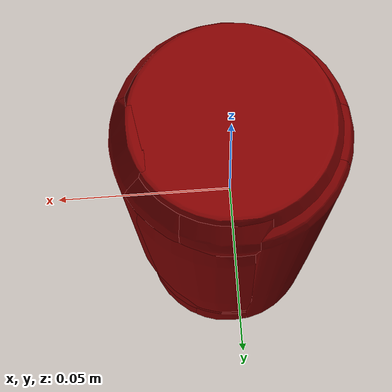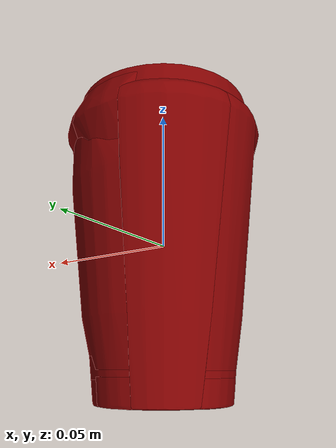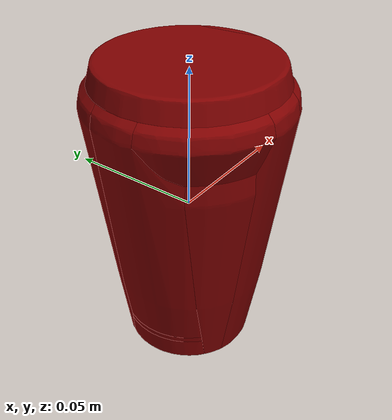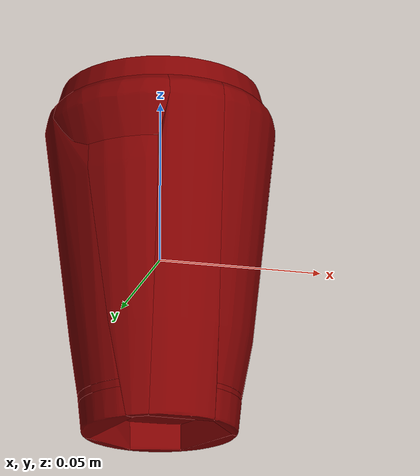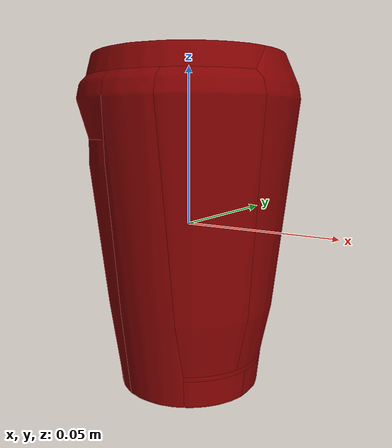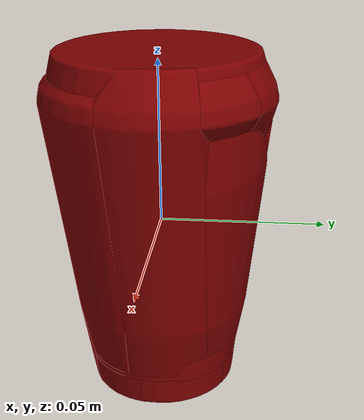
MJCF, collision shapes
<mujoco model="coffee_cup_32">
  <asset>
    <mesh file="visual/model_normalized_0.obj" name="model_normalized_0_vis" scale="0.10500000000000002 0.10500000000000002 0.10500000000000002" refquat="1.0000000000000004 0.0 0.0 0.0"/>
    <texture type="2d" name="image0" file="visual/image0.png"/>
    <material name="initialShadingGroup.004" texture="image0" specular="0.5" shininess="0.25"/>
    <mesh file="collision/collision_mesh_collision_0.obj" name="coffee_collision_mesh_0" scale="0.10500000000000002 0.10500000000000002 0.10500000000000002" refquat="1.0000000000000004 0.0 0.0 0.0"/>
    <mesh file="collision/collision_mesh_collision_1.obj" name="coffee_collision_mesh_1" scale="0.10500000000000002 0.10500000000000002 0.10500000000000002" refquat="1.0000000000000004 0.0 0.0 0.0"/>
    <mesh file="collision/collision_mesh_collision_2.obj" name="coffee_collision_mesh_2" scale="0.10500000000000002 0.10500000000000002 0.10500000000000002" refquat="1.0000000000000004 0.0 0.0 0.0"/>
    <mesh file="collision/collision_mesh_collision_3.obj" name="coffee_collision_mesh_3" scale="0.10500000000000002 0.10500000000000002 0.10500000000000002" refquat="1.0000000000000004 0.0 0.0 0.0"/>
    <mesh file="collision/collision_mesh_collision_4.obj" name="coffee_collision_mesh_4" scale="0.10500000000000002 0.10500000000000002 0.10500000000000002" refquat="1.0000000000000004 0.0 0.0 0.0"/>
    <mesh file="collision/collision_mesh_collision_5.obj" name="coffee_collision_mesh_5" scale="0.10500000000000002 0.10500000000000002 0.10500000000000002" refquat="1.0000000000000004 0.0 0.0 0.0"/>
    <mesh file="collision/collision_mesh_collision_6.obj" name="coffee_collision_mesh_6" scale="0.10500000000000002 0.10500000000000002 0.10500000000000002" refquat="1.0000000000000004 0.0 0.0 0.0"/>
    <mesh file="collision/collision_mesh_collision_7.obj" name="coffee_collision_mesh_7" scale="0.10500000000000002 0.10500000000000002 0.10500000000000002" refquat="1.0000000000000004 0.0 0.0 0.0"/>
    <mesh file="collision/collision_mesh_collision_8.obj" name="coffee_collision_mesh_8" scale="0.10500000000000002 0.10500000000000002 0.10500000000000002" refquat="1.0000000000000004 0.0 0.0 0.0"/>
    <mesh file="collision/collision_mesh_collision_9.obj" name="coffee_collision_mesh_9" scale="0.10500000000000002 0.10500000000000002 0.10500000000000002" refquat="1.0000000000000004 0.0 0.0 0.0"/>
    <mesh file="collision/collision_mesh_collision_10.obj" name="coffee_collision_mesh_10" scale="0.10500000000000002 0.10500000000000002 0.10500000000000002" refquat="1.0000000000000004 0.0 0.0 0.0"/>
    <mesh file="collision/collision_mesh_collision_11.obj" name="coffee_collision_mesh_11" scale="0.10500000000000002 0.10500000000000002 0.10500000000000002" refquat="1.0000000000000004 0.0 0.0 0.0"/>
    <mesh file="collision/collision_mesh_collision_12.obj" name="coffee_collision_mesh_12" scale="0.10500000000000002 0.10500000000000002 0.10500000000000002" refquat="1.0000000000000004 0.0 0.0 0.0"/>
    <mesh file="collision/collision_mesh_collision_13.obj" name="coffee_collision_mesh_13" scale="0.10500000000000002 0.10500000000000002 0.10500000000000002" refquat="1.0000000000000004 0.0 0.0 0.0"/>
    <mesh file="collision/collision_mesh_collision_14.obj" name="coffee_collision_mesh_14" scale="0.10500000000000002 0.10500000000000002 0.10500000000000002" refquat="1.0000000000000004 0.0 0.0 0.0"/>
    <mesh file="collision/collision_mesh_collision_15.obj" name="coffee_collision_mesh_15" scale="0.10500000000000002 0.10500000000000002 0.10500000000000002" refquat="1.0000000000000004 0.0 0.0 0.0"/>
  </asset>
  <default>
    <default class="region">
      <geom group="1" conaffinity="0" contype="0" rgba="0 1 0 0"/>
    </default>
    <default class="collision">
      <geom group="0" rgba="0.5 0 0 0.5" density="1000.0"/>
    </default>
  </default>
  <worldbody>
    <body>
      <body name="object">
        <geom solimp="0.998 0.998 0.001" solref="0.001 1" density="100" friction="0.95 0.3 0.1" type="mesh" mesh="model_normalized_0_vis" conaffinity="0" contype="0" group="1" material="initialShadingGroup.004"/>
        <geom class="region" name="reg_bbox" type="box" pos="-3.3180000000021535e-07 -1.3439999999920184e-07 6.0745125000005466e-05" size="0.03475835160000001 0.03475688370000001 0.053016756975000016"/>
        <geom mesh="coffee_collision_mesh_0" type="mesh" class="collision"/>
        <geom mesh="coffee_collision_mesh_1" type="mesh" class="collision"/>
        <geom mesh="coffee_collision_mesh_2" type="mesh" class="collision"/>
        <geom mesh="coffee_collision_mesh_3" type="mesh" class="collision"/>
        <geom mesh="coffee_collision_mesh_4" type="mesh" class="collision"/>
        <geom mesh="coffee_collision_mesh_5" type="mesh" class="collision"/>
        <geom mesh="coffee_collision_mesh_6" type="mesh" class="collision"/>
        <geom mesh="coffee_collision_mesh_7" type="mesh" class="collision"/>
        <geom mesh="coffee_collision_mesh_8" type="mesh" class="collision"/>
        <geom mesh="coffee_collision_mesh_9" type="mesh" class="collision"/>
        <geom mesh="coffee_collision_mesh_10" type="mesh" class="collision"/>
        <geom mesh="coffee_collision_mesh_11" type="mesh" class="collision"/>
        <geom mesh="coffee_collision_mesh_12" type="mesh" class="collision"/>
        <geom mesh="coffee_collision_mesh_13" type="mesh" class="collision"/>
        <geom mesh="coffee_collision_mesh_14" type="mesh" class="collision"/>
        <geom mesh="coffee_collision_mesh_15" type="mesh" class="collision"/>
      </body>
    </body>
  </worldbody>
</mujoco>
